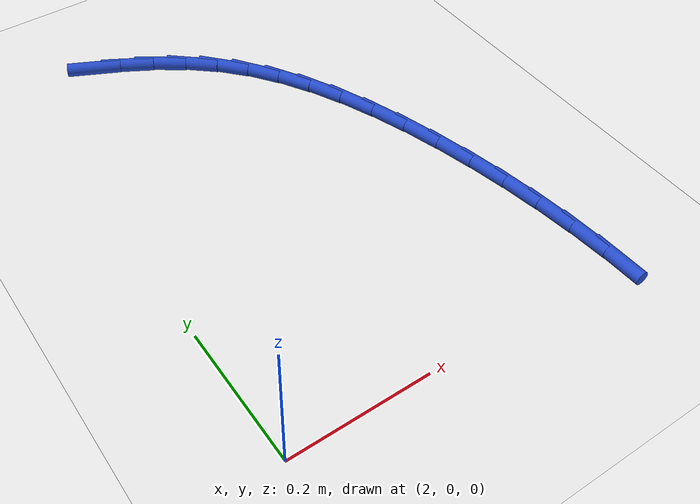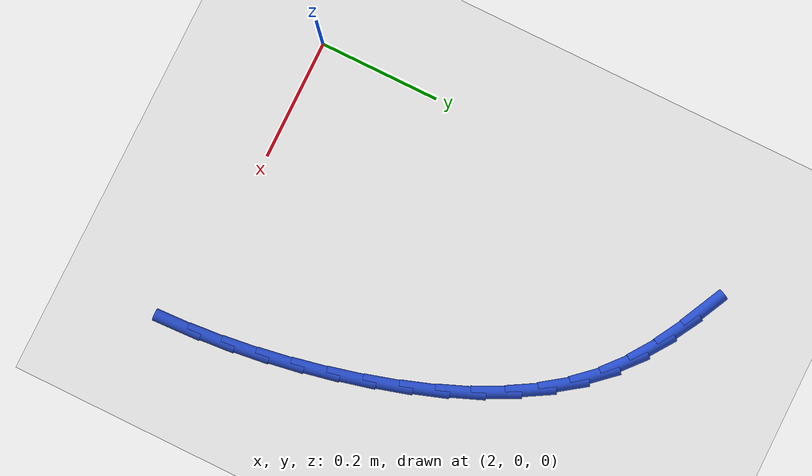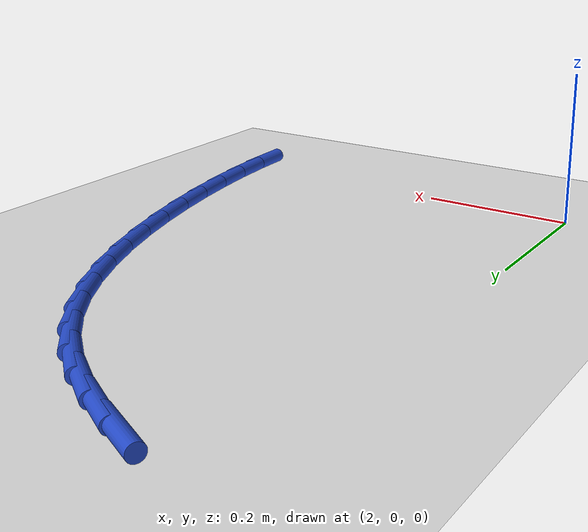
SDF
<sdf version="1.6">
 <world name="default">
  <model name="ground_plane">
   <static>1</static>
   <link name="link">
    <collision name="collision">
     <geometry><plane><normal>0 0 1</normal><size>100 100</size></plane></geometry>
     <surface><friction><ode><mu>100</mu><mu2>50</mu2></ode></friction></surface>
    </collision>
    <visual name="visual">
     <cast_shadows>0</cast_shadows>
     <geometry><plane><normal>0 0 1</normal><size>100 100</size></plane></geometry>
     <material>
      <script><uri>file://media/materials/scripts/gazebo.material</uri><name>Gazebo/WhiteGlow</name></script>
     </material>
    </visual>
   </link>
  </model>
  <model name="line">
   <link name="link_53">
    <pose>2.1168791829905222 0.7226475606699929 0.01 0 1.57 -0.45574903315459</pose>
    <collision name="collision">
     <geometry><cylinder><radius>0.01</radius><length>0.08</length></cylinder></geometry>
    </collision>
    <visual name="visual">
     <material>
      <script><name>Gazebo/Blue</name><uri>file://media/materials/scripts/gazebo.material</uri></script>
     </material>
     <geometry><cylinder><radius>0.01</radius><length>0.08</length></cylinder></geometry>
    </visual>
   </link>
   <link name="link_54">
    <pose>2.1626073898526577 0.7002331751634202 0.01 0 1.57 -0.5213697091800215</pose>
    <collision name="collision">
     <geometry><cylinder><radius>0.01</radius><length>0.08</length></cylinder></geometry>
    </collision>
    <visual name="visual">
     <material>
      <script><name>Gazebo/Blue</name><uri>file://media/materials/scripts/gazebo.material</uri></script>
     </material>
     <geometry><cylinder><radius>0.01</radius><length>0.08</length></cylinder></geometry>
    </visual>
   </link>
   <link name="link_55">
    <pose>2.205951664287162 0.6753370043097637 0.01 0 1.57 -0.6092881485719072</pose>
    <collision name="collision">
     <geometry><cylinder><radius>0.01</radius><length>0.08</length></cylinder></geometry>
    </collision>
    <visual name="visual">
     <material>
      <script><name>Gazebo/Blue</name><uri>file://media/materials/scripts/gazebo.material</uri></script>
     </material>
     <geometry><cylinder><radius>0.01</radius><length>0.08</length></cylinder></geometry>
    </visual>
   </link>
   <link name="link_56">
    <pose>2.246502431156852 0.6470382539683901 0.01 0 1.57 -0.7179634357631732</pose>
    <collision name="collision">
     <geometry><cylinder><radius>0.01</radius><length>0.08</length></cylinder></geometry>
    </collision>
    <visual name="visual">
     <material>
      <script><name>Gazebo/Blue</name><uri>file://media/materials/scripts/gazebo.material</uri></script>
     </material>
     <geometry><cylinder><radius>0.01</radius><length>0.08</length></cylinder></geometry>
    </visual>
   </link>
   <link name="link_57">
    <pose>2.283850115324544 0.6144161299986648 0.01 0 1.57 -0.8401181218053861</pose>
    <collision name="collision">
     <geometry><cylinder><radius>0.01</radius><length>0.08</length></cylinder></geometry>
    </collision>
    <visual name="visual">
     <material>
      <script><name>Gazebo/Blue</name><uri>file://media/materials/scripts/gazebo.material</uri></script>
     </material>
     <geometry><cylinder><radius>0.01</radius><length>0.08</length></cylinder></geometry>
    </visual>
   </link>
   <link name="link_58">
    <pose>2.3176432618474703 0.5767064414686103 0.01 0 1.57 -0.9518142964372253</pose>
    <collision name="collision">
     <geometry><cylinder><radius>0.01</radius><length>0.08</length></cylinder></geometry>
    </collision>
    <visual name="visual">
     <material>
      <script><name>Gazebo/Blue</name><uri>file://media/materials/scripts/gazebo.material</uri></script>
     </material>
     <geometry><cylinder><radius>0.01</radius><length>0.08</length></cylinder></geometry>
    </visual>
   </link>
   <link name="link_59">
    <pose>2.3479225612927976 0.5342016223548923 0.01 0 1.57 -1.0458993241131336</pose>
    <collision name="collision">
     <geometry><cylinder><radius>0.01</radius><length>0.08</length></cylinder></geometry>
    </collision>
    <visual name="visual">
     <material>
      <script><name>Gazebo/Blue</name><uri>file://media/materials/scripts/gazebo.material</uri></script>
     </material>
     <geometry><cylinder><radius>0.01</radius><length>0.08</length></cylinder></geometry>
    </visual>
   </link>
   <link name="link_60">
    <pose>2.3748908278472105 0.4876309441098679 0.01 0 1.57 -1.1248125704359455</pose>
    <collision name="collision">
     <geometry><cylinder><radius>0.01</radius><length>0.08</length></cylinder></geometry>
    </collision>
    <visual name="visual">
     <material>
      <script><name>Gazebo/Blue</name><uri>file://media/materials/scripts/gazebo.material</uri></script>
     </material>
     <geometry><cylinder><radius>0.01</radius><length>0.08</length></cylinder></geometry>
    </visual>
   </link>
   <link name="link_61">
    <pose>2.3987513897697648 0.4377250633392593 0.01 0 1.57 -1.1910779744897673</pose>
    <collision name="collision">
     <geometry><cylinder><radius>0.01</radius><length>0.08</length></cylinder></geometry>
    </collision>
    <visual name="visual">
     <material>
      <script><name>Gazebo/Blue</name><uri>file://media/materials/scripts/gazebo.material</uri></script>
     </material>
     <geometry><cylinder><radius>0.01</radius><length>0.08</length></cylinder></geometry>
    </visual>
   </link>
   <link name="link_62">
    <pose>2.419707575319518 0.38521463664878963 0.01 0 1.57 -1.246945007474544</pose>
    <collision name="collision">
     <geometry><cylinder><radius>0.01</radius><length>0.08</length></cylinder></geometry>
    </collision>
    <visual name="visual">
     <material>
      <script><name>Gazebo/Blue</name><uri>file://media/materials/scripts/gazebo.material</uri></script>
     </material>
     <geometry><cylinder><radius>0.01</radius><length>0.08</length></cylinder></geometry>
    </visual>
   </link>
   <link name="link_63">
    <pose>2.4379627127555246 0.33083032064418055 0.01 0 1.57 -1.2942890518727148</pose>
    <collision name="collision">
     <geometry><cylinder><radius>0.01</radius><length>0.08</length></cylinder></geometry>
    </collision>
    <visual name="visual">
     <material>
      <script><name>Gazebo/Blue</name><uri>file://media/materials/scripts/gazebo.material</uri></script>
     </material>
     <geometry><cylinder><radius>0.01</radius><length>0.08</length></cylinder></geometry>
    </visual>
   </link>
   <link name="link_64">
    <pose>2.4537201303368428 0.2753027719311555 0.01 0 1.57 -1.3347752834350097</pose>
    <collision name="collision">
     <geometry><cylinder><radius>0.01</radius><length>0.08</length></cylinder></geometry>
    </collision>
    <visual name="visual">
     <material>
      <script><name>Gazebo/Blue</name><uri>file://media/materials/scripts/gazebo.material</uri></script>
     </material>
     <geometry><cylinder><radius>0.01</radius><length>0.08</length></cylinder></geometry>
    </visual>
   </link>
   <link name="link_65">
    <pose>2.46717788145442 0.21934621079997654 0.01 0 1.57 -1.3726238532755404</pose>
    <collision name="collision">
     <geometry><cylinder><radius>0.01</radius><length>0.08</length></cylinder></geometry>
    </collision>
    <visual name="visual">
     <material>
      <script><name>Gazebo/Blue</name><uri>file://media/materials/scripts/gazebo.material</uri></script>
     </material>
     <geometry><cylinder><radius>0.01</radius><length>0.08</length></cylinder></geometry>
    </visual>
   </link>
   <link name="link_66">
    <pose>2.478425218837699 0.16333583825956866 0.01 0 1.57 -1.4110499724930692</pose>
    <collision name="collision">
     <geometry><cylinder><radius>0.01</radius><length>0.08</length></cylinder></geometry>
    </collision>
    <visual name="visual">
     <material>
      <script><name>Gazebo/Blue</name><uri>file://media/materials/scripts/gazebo.material</uri></script>
     </material>
     <geometry><cylinder><radius>0.01</radius><length>0.08</length></cylinder></geometry>
    </visual>
   </link>
   <link name="link_67">
    <pose>2.4874491271899997 0.10732819151445805 0.01 0 1.57 -1.450166023117443</pose>
    <collision name="collision">
     <geometry><cylinder><radius>0.01</radius><length>0.08</length></cylinder></geometry>
    </collision>
    <visual name="visual">
     <material>
      <script><name>Gazebo/Blue</name><uri>file://media/materials/scripts/gazebo.material</uri></script>
     </material>
     <geometry><cylinder><radius>0.01</radius><length>0.08</length></cylinder></geometry>
    </visual>
   </link>
   <link name="link_68">
    <pose>2.494232624444166 0.05136744744287516 0.01 0 1.57 -1.4899610210386731</pose>
    <collision name="collision">
     <geometry><cylinder><radius>0.01</radius><length>0.08</length></cylinder></geometry>
    </collision>
    <visual name="visual">
     <material>
      <script><name>Gazebo/Blue</name><uri>file://media/materials/scripts/gazebo.material</uri></script>
     </material>
     <geometry><cylinder><radius>0.01</radius><length>0.08</length></cylinder></geometry>
    </visual>
   </link>
   <link name="link_69">
    <pose>2.498758728533042 -0.004502217076947528 0.01 0 1.57 -1.5304172323101213</pose>
    <collision name="collision">
     <geometry><cylinder><radius>0.01</radius><length>0.08</length></cylinder></geometry>
    </collision>
    <visual name="visual">
     <material>
      <script><name>Gazebo/Blue</name><uri>file://media/materials/scripts/gazebo.material</uri></script>
     </material>
     <geometry><cylinder><radius>0.01</radius><length>0.08</length></cylinder></geometry>
    </visual>
   </link>
  </model>
 </world>
</sdf>
